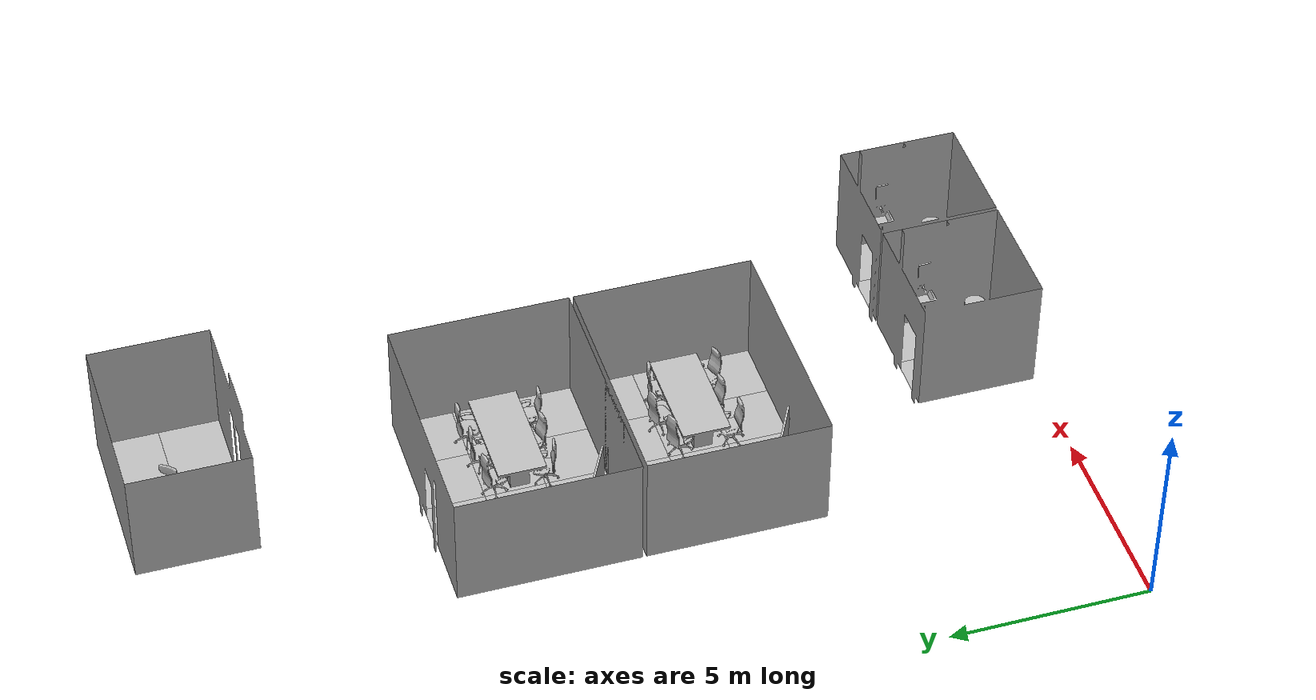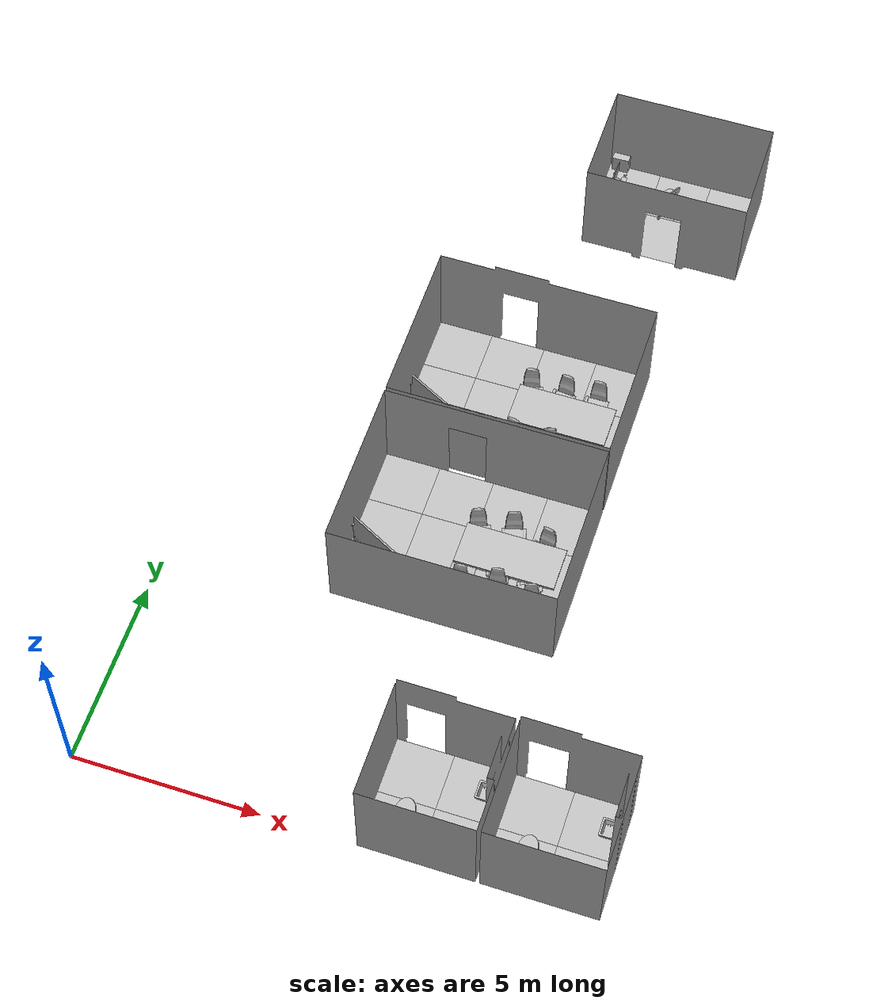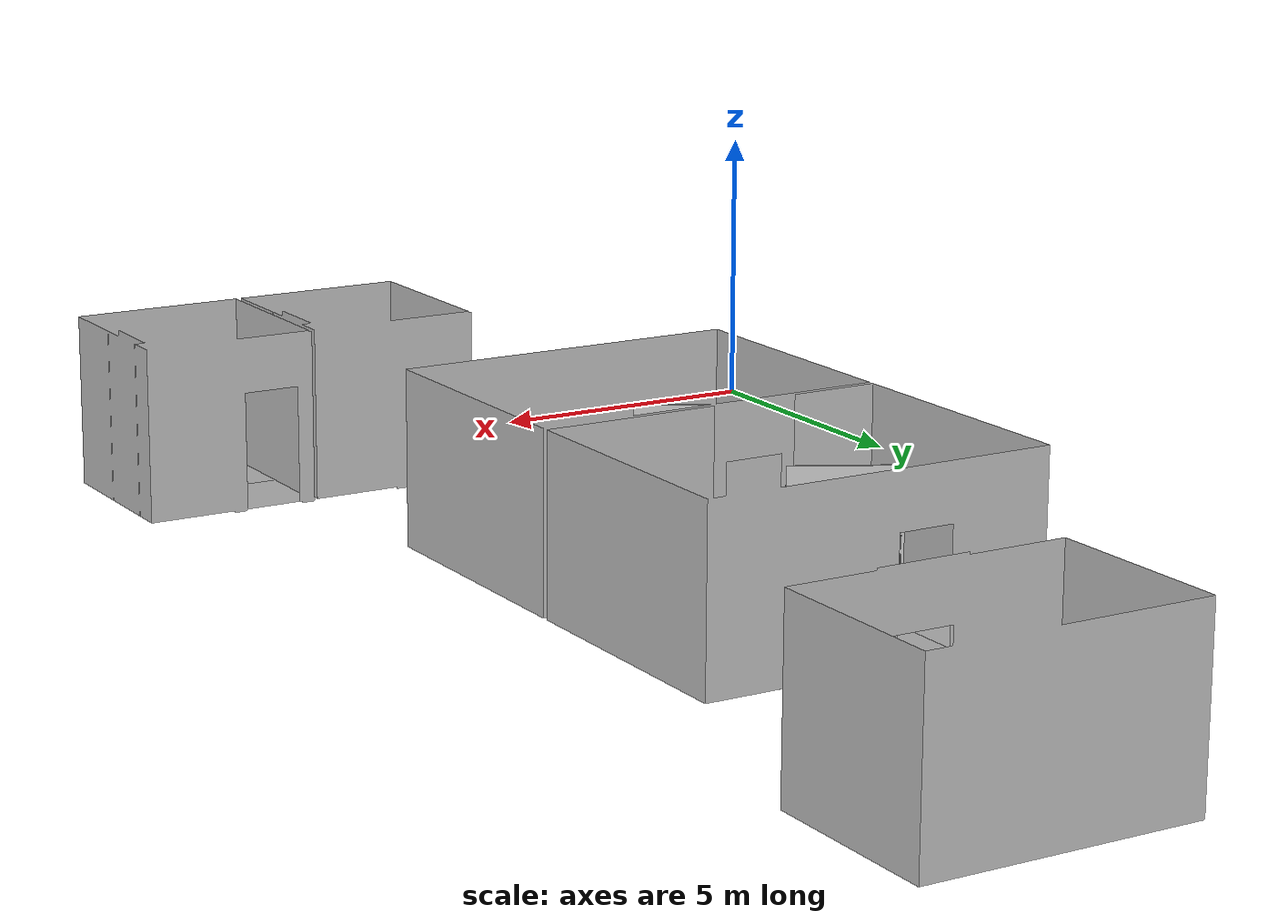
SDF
<sdf version="1.7">
 <world name="default">
  <model name="PublicBathroomA">
   <static>1</static>
   <pose>9 3 0 0 -0 0</pose>
   <link name="link">
    <collision name="right_of_door">
     <pose>0.63 0.05 1.5 0 -0 0</pose>
     <geometry><box><size>1.74 0.1 3</size></box></geometry>
    </collision>
    <collision name="left_of_door">
     <pose>-1.38 0.05 1.5 0 -0 0</pose>
     <geometry><box><size>0.24 0.1 3</size></box></geometry>
    </collision>
    <collision name="top_of_door">
     <pose>-0.75 0.05 2.55 0 -0 0</pose>
     <geometry><box><size>1.5 0.1 0.9</size></box></geometry>
    </collision>
    <collision name="right">
     <pose>1.55 -1.5 1.5 0 -0 0</pose>
     <geometry><box><size>0.1 3 3</size></box></geometry>
    </collision>
    <collision name="left">
     <pose>-1.55 -1.5 1.5 0 -0 0</pose>
     <geometry><box><size>0.1 3 3</size></box></geometry>
    </collision>
    <collision name="back">
     <pose>0 -3.05 1.5 0 -0 0</pose>
     <geometry><box><size>3 0.1 3</size></box></geometry>
    </collision>
    <visual name="visual">
     <geometry><mesh><uri>model://media/meshes/bathroom.obj</uri><scale>0.01 0.01 0.01</scale></mesh></geometry>
    </visual>
    <visual name="floor_0_-1">
     <pose>0 -1.5 0 0 -0 0</pose>
     <geometry><mesh><uri>model://media/meshes/tile.obj</uri><scale>0.01 0.01 0.01</scale></mesh></geometry>
    </visual>
    <visual name="floor_0_0">
     <geometry><mesh><uri>model://media/meshes/tile.obj</uri><scale>0.01 0.01 0.01</scale></mesh></geometry>
    </visual>
    <visual name="floor_1_-1">
     <pose>1.5 -1.5 0 0 -0 0</pose>
     <geometry><mesh><uri>model://media/meshes/tile.obj</uri><scale>0.01 0.01 0.01</scale></mesh></geometry>
    </visual>
    <visual name="floor_1_0">
     <pose>1.5 0 0 0 -0 0</pose>
     <geometry><mesh><uri>model://media/meshes/tile.obj</uri><scale>0.01 0.01 0.01</scale></mesh></geometry>
    </visual>
   </link>
   <frame name="toilet::__model__" attached_to="toilet::link">
    <pose relative_to="__model__">-0.6 -2.1 0 0 -0 3.14159</pose>
   </frame>
   <static>1</static>
   <link name="toilet::link">
    <collision name="collision">
     <pose>-0.003873 0.134001 0.582097 0 -0 0</pose>
     <geometry><box><size>0.551631 1.09406 1.18218</size></box></geometry>
    </collision>
    <visual name="visual">
     <geometry><mesh><uri>model://toilet/meshes/toilet.dae</uri><scale>1.4 1.4 1.4</scale></mesh></geometry>
    </visual>
    <pose relative_to="toilet::__model__">0 0 0 0 -0 0</pose>
   </link>
   <frame name="wastebasket::__model__" attached_to="wastebasket::link">
    <pose relative_to="__model__">0.9 -2.35 0 0 0 -0.785398</pose>
   </frame>
   <static>1</static>
   <link name="wastebasket::link">
    <pose relative_to="wastebasket::__model__">0 0 0 0 -0 1.5708</pose>
    <collision name="collision">
     <pose>0.001581 0.000308 0.312969 0 -0 0</pose>
     <geometry><cylinder><radius>0.27</radius><length>0.63</length></cylinder></geometry>
    </collision>
    <visual name="visual">
     <geometry>
      <mesh><uri>model://wastebasket/meshes/wastebasket.dae</uri><scale>1.4 1.4 1.4</scale></mesh>
     </geometry>
    </visual>
   </link>
  </model>
  <model name="PublicBathroomB">
   <static>1</static>
   <pose>12.1 3 0 0 -0 0</pose>
   <link name="link">
    <collision name="right_of_door">
     <pose>0.63 0.05 1.5 0 -0 0</pose>
     <geometry><box><size>1.74 0.1 3</size></box></geometry>
    </collision>
    <collision name="left_of_door">
     <pose>-1.38 0.05 1.5 0 -0 0</pose>
     <geometry><box><size>0.24 0.1 3</size></box></geometry>
    </collision>
    <collision name="top_of_door">
     <pose>-0.75 0.05 2.55 0 -0 0</pose>
     <geometry><box><size>1.5 0.1 0.9</size></box></geometry>
    </collision>
    <collision name="right">
     <pose>1.55 -1.5 1.5 0 -0 0</pose>
     <geometry><box><size>0.1 3 3</size></box></geometry>
    </collision>
    <collision name="left">
     <pose>-1.55 -1.5 1.5 0 -0 0</pose>
     <geometry><box><size>0.1 3 3</size></box></geometry>
    </collision>
    <collision name="back">
     <pose>0 -3.05 1.5 0 -0 0</pose>
     <geometry><box><size>3 0.1 3</size></box></geometry>
    </collision>
    <visual name="visual">
     <geometry><mesh><uri>model://media/meshes/bathroom.obj</uri><scale>0.01 0.01 0.01</scale></mesh></geometry>
    </visual>
    <visual name="floor_0_-1">
     <pose>0 -1.5 0 0 -0 0</pose>
     <geometry><mesh><uri>model://media/meshes/tile.obj</uri><scale>0.01 0.01 0.01</scale></mesh></geometry>
    </visual>
    <visual name="floor_0_0">
     <geometry><mesh><uri>model://media/meshes/tile.obj</uri><scale>0.01 0.01 0.01</scale></mesh></geometry>
    </visual>
    <visual name="floor_1_-1">
     <pose>1.5 -1.5 0 0 -0 0</pose>
     <geometry><mesh><uri>model://media/meshes/tile.obj</uri><scale>0.01 0.01 0.01</scale></mesh></geometry>
    </visual>
    <visual name="floor_1_0">
     <pose>1.5 0 0 0 -0 0</pose>
     <geometry><mesh><uri>model://media/meshes/tile.obj</uri><scale>0.01 0.01 0.01</scale></mesh></geometry>
    </visual>
   </link>
   <frame name="toilet::__model__" attached_to="toilet::link">
    <pose relative_to="__model__">-0.6 -2.1 0 0 -0 3.14159</pose>
   </frame>
   <static>1</static>
   <link name="toilet::link">
    <collision name="collision">
     <pose>-0.003873 0.134001 0.582097 0 -0 0</pose>
     <geometry><box><size>0.551631 1.09406 1.18218</size></box></geometry>
    </collision>
    <visual name="visual">
     <geometry><mesh><uri>model://toilet/meshes/toilet.dae</uri><scale>1.4 1.4 1.4</scale></mesh></geometry>
    </visual>
    <pose relative_to="toilet::__model__">0 0 0 0 -0 0</pose>
   </link>
   <frame name="wastebasket::__model__" attached_to="wastebasket::link">
    <pose relative_to="__model__">0.9 -2.35 0 0 0 -0.785398</pose>
   </frame>
   <static>1</static>
   <link name="wastebasket::link">
    <pose relative_to="wastebasket::__model__">0 0 0 0 -0 1.5708</pose>
    <collision name="collision">
     <pose>0.001581 0.000308 0.312969 0 -0 0</pose>
     <geometry><cylinder><radius>0.27</radius><length>0.63</length></cylinder></geometry>
    </collision>
    <visual name="visual">
     <geometry>
      <mesh><uri>model://wastebasket/meshes/wastebasket.dae</uri><scale>1.4 1.4 1.4</scale></mesh>
     </geometry>
    </visual>
   </link>
  </model>
  <model name="PublicMeetingRoomD">
   <static>1</static>
   <pose>8.9 19.5 0 0 -0 3.14159</pose>
   <link name="link">
    <collision name="right_of_door">
     <pose>0.63 0.05 1.5 0 -0 0</pose>
     <geometry><box><size>1.74 0.1 3</size></box></geometry>
    </collision>
    <collision name="left_of_door">
     <pose>-2.13 0.05 1.5 0 -0 0</pose>
     <geometry><box><size>1.74 0.1 3</size></box></geometry>
    </collision>
    <collision name="top_of_door">
     <pose>-0.75 0.05 2.55 0 -0 0</pose>
     <geometry><box><size>1.5 0.1 0.9</size></box></geometry>
    </collision>
    <collision name="right">
     <pose>1.55 -1.5 1.5 0 -0 0</pose>
     <geometry><box><size>0.1 3 3</size></box></geometry>
    </collision>
    <collision name="left">
     <pose>-3.05 -1.5 1.5 0 -0 0</pose>
     <geometry><box><size>0.1 3 3</size></box></geometry>
    </collision>
    <collision name="back">
     <pose>-0.75 -3.05 1.5 0 -0 0</pose>
     <geometry><box><size>4.5 0.1 3</size></box></geometry>
    </collision>
    <visual name="visual">
     <geometry>
      <mesh><uri>model://media/meshes/office_small.obj</uri><scale>0.01 0.01 0.01</scale></mesh>
     </geometry>
    </visual>
    <visual name="floor_-1_-1">
     <pose>-1.5 -1.5 0 0 -0 0</pose>
     <geometry><mesh><uri>model://media/meshes/carpet.obj</uri><scale>0.01 0.01 0.01</scale></mesh></geometry>
    </visual>
    <visual name="floor_-1_0">
     <pose>-1.5 0 0 0 -0 0</pose>
     <geometry><mesh><uri>model://media/meshes/carpet.obj</uri><scale>0.01 0.01 0.01</scale></mesh></geometry>
    </visual>
    <visual name="floor_0_-1">
     <pose>0 -1.5 0 0 -0 0</pose>
     <geometry><mesh><uri>model://media/meshes/carpet.obj</uri><scale>0.01 0.01 0.01</scale></mesh></geometry>
    </visual>
    <visual name="floor_0_0">
     <geometry><mesh><uri>model://media/meshes/carpet.obj</uri><scale>0.01 0.01 0.01</scale></mesh></geometry>
    </visual>
    <visual name="floor_1_-1">
     <pose>1.5 -1.5 0 0 -0 0</pose>
     <geometry><mesh><uri>model://media/meshes/carpet.obj</uri><scale>0.01 0.01 0.01</scale></mesh></geometry>
    </visual>
    <visual name="floor_1_0">
     <pose>1.5 0 0 0 -0 0</pose>
     <geometry><mesh><uri>model://media/meshes/carpet.obj</uri><scale>0.01 0.01 0.01</scale></mesh></geometry>
    </visual>
   </link>
   <model name="corner_1">
    <static>1</static>
    <pose>1.5 -3 0 0 0 -1.5708</pose>
    <link name="link">
     <collision name="collision_x">
      <pose>-0.925 -0.375 0.38 0 -0 0</pose>
      <geometry><box><size>1.85 0.75 0.76</size></box></geometry>
     </collision>
     <collision name="collision_y">
      <pose>-0.375 -0.925 0.38 0 -0 0</pose>
      <geometry><box><size>0.75 1.85 0.76</size></box></geometry>
     </collision>
    </link>
    <frame name="computer::__model__" attached_to="computer::monitor">
     <pose relative_to="__model__">-1.22 -0.45 0.76 0 -0 0</pose>
    </frame>
    <static>1</static>
    <link name="computer::monitor">
     <visual name="visual">
      <geometry>
       <mesh><uri>model://computer/meshes/computer_monitor.obj</uri><scale>0.01 0.01 0.01</scale></mesh>
      </geometry>
     </visual>
     <pose relative_to="computer::__model__">0 0 0 0 -0 0</pose>
    </link>
    <link name="computer::tower">
     <pose relative_to="computer::__model__">0.5 0 0 0 -0 0</pose>
     <visual name="visual">
      <geometry>
       <mesh><uri>model://computer/meshes/computer_tower.obj</uri><scale>0.01 0.01 0.01</scale></mesh>
      </geometry>
     </visual>
    </link>
    <frame name="office_chair::__model__" attached_to="office_chair::link">
     <pose relative_to="__model__">-1.1953 -1.99907 0 0 -0 2.47197</pose>
    </frame>
    <static>1</static>
    <link name="office_chair::link">
     <collision name="collision">
      <pose>0.001581 0.000308 0.569888 0 -0 0</pose>
      <geometry><cylinder><radius>0.43</radius><length>1.14</length></cylinder></geometry>
     </collision>
     <visual name="visual">
      <geometry>
       <mesh><uri>model://office_chair/meshes/office_chair.dae</uri><scale>1.4 1.4 1.4</scale></mesh>
      </geometry>
     </visual>
     <pose relative_to="office_chair::__model__">0 0 0 0 -0 0</pose>
    </link>
   </model>
   <frame name="office_box::__model__" attached_to="office_box::link">
    <pose relative_to="__model__">1.1 -0.5 0 0 -0 3.14159</pose>
   </frame>
   <static>1</static>
   <link name="office_box::link">
    <pose relative_to="office_box::__model__">0 0 0.15 0 -0 0.7</pose>
    <collision name="collision"><geometry><box><size>0.5 0.4 0.3</size></box></geometry></collision>
    <visual name="visual">
     <pose>0 0 -0.15 0 -0 0</pose>
     <geometry>
      <mesh><uri>model://office_box/meshes/office_box.dae</uri><scale>1.25932 1.00745 0.755591</scale></mesh>
     </geometry>
    </visual>
   </link>
  </model>
  <model name="PrivateMeetingRoomA">
   <link name="link">
    <visual name="floor_2_-1">
     <pose>3 -1.5 0 0 -0 0</pose>
     <geometry><mesh><uri>model://media/meshes/carpet.obj</uri><scale>0.01 0.01 0.01</scale></mesh></geometry>
     <material><shader type="pixel"/></material>
    </visual>
    <visual name="visual">
     <geometry>
      <mesh><uri>model://media/meshes/meeting_room_small.obj</uri><scale>0.01 0.01 0.01</scale></mesh>
     </geometry>
     <material><shader type="pixel"/></material>
    </visual>
    <visual name="floor_-1_-2">
     <pose>-1.5 -3 0 0 -0 0</pose>
     <geometry><mesh><uri>model://media/meshes/carpet.obj</uri><scale>0.01 0.01 0.01</scale></mesh></geometry>
     <material><shader type="pixel"/></material>
    </visual>
    <visual name="floor_-1_-1">
     <pose>-1.5 -1.5 0 0 -0 0</pose>
     <geometry><mesh><uri>model://media/meshes/carpet.obj</uri><scale>0.01 0.01 0.01</scale></mesh></geometry>
     <material><shader type="pixel"/></material>
    </visual>
    <visual name="floor_-1_0">
     <pose>-1.5 0 0 0 -0 0</pose>
     <geometry><mesh><uri>model://media/meshes/carpet.obj</uri><scale>0.01 0.01 0.01</scale></mesh></geometry>
     <material><shader type="pixel"/></material>
    </visual>
    <visual name="floor_0_-2">
     <pose>0 -3 0 0 -0 0</pose>
     <geometry><mesh><uri>model://media/meshes/carpet.obj</uri><scale>0.01 0.01 0.01</scale></mesh></geometry>
     <material><shader type="pixel"/></material>
    </visual>
    <visual name="floor_0_-1">
     <pose>0 -1.5 0 0 -0 0</pose>
     <geometry><mesh><uri>model://media/meshes/carpet.obj</uri><scale>0.01 0.01 0.01</scale></mesh></geometry>
     <material><shader type="pixel"/></material>
    </visual>
    <visual name="floor_0_0">
     <geometry><mesh><uri>model://media/meshes/carpet.obj</uri><scale>0.01 0.01 0.01</scale></mesh></geometry>
     <material><shader type="pixel"/></material>
    </visual>
    <visual name="floor_1_-2">
     <pose>1.5 -3 0 0 -0 0</pose>
     <geometry><mesh><uri>model://media/meshes/carpet.obj</uri><scale>0.01 0.01 0.01</scale></mesh></geometry>
     <material><shader type="pixel"/></material>
    </visual>
    <visual name="floor_1_-1">
     <pose>1.5 -1.5 0 0 -0 0</pose>
     <geometry><mesh><uri>model://media/meshes/carpet.obj</uri><scale>0.01 0.01 0.01</scale></mesh></geometry>
     <material><shader type="pixel"/></material>
    </visual>
    <visual name="floor_1_0">
     <pose>1.5 0 0 0 -0 0</pose>
     <geometry><mesh><uri>model://media/meshes/carpet.obj</uri><scale>0.01 0.01 0.01</scale></mesh></geometry>
     <material><shader type="pixel"/></material>
    </visual>
    <visual name="floor_2_-2">
     <pose>3 -3 0 0 -0 0</pose>
     <geometry><mesh><uri>model://media/meshes/carpet.obj</uri><scale>0.01 0.01 0.01</scale></mesh></geometry>
     <material><shader type="pixel"/></material>
    </visual>
    <visual name="floor_2_0">
     <pose>3 0 0 0 -0 0</pose>
     <geometry><mesh><uri>model://media/meshes/carpet.obj</uri><scale>0.01 0.01 0.01</scale></mesh></geometry>
     <material><shader type="pixel"/></material>
    </visual>
    <collision name="right_of_door">
     <pose>1.38 0.05 1.5 0 -0 0</pose>
     <geometry><box><size>3.24 0.1 3</size></box></geometry>
     <surface>
      <friction>
       <ode><mu>1</mu><mu2>1</mu2><fdir1>0 0 0</fdir1><slip1>0</slip1><slip2>0</slip2></ode>
       <torsional>
        <coefficient>1</coefficient>
        <patch_radius>0</patch_radius>
        <surface_radius>0</surface_radius>
        <use_patch_radius>1</use_patch_radius>
        <ode><slip>0</slip></ode>
       </torsional>
      </friction>
      <bounce><restitution_coefficient>0</restitution_coefficient><threshold>1e+06</threshold></bounce>
      <contact>
       <collide_without_contact>0</collide_without_contact>
       <collide_without_contact_bitmask>1</collide_without_contact_bitmask>
       <collide_bitmask>1</collide_bitmask>
       <ode>
        <soft_cfm>0</soft_cfm>
        <soft_erp>0.2</soft_erp>
        <kp>1e+13</kp>
        <kd>1</kd>
        <max_vel>0.01</max_vel>
        <min_depth>0</min_depth>
       </ode>
       <bullet>
        <split_impulse>1</split_impulse>
        <split_impulse_penetration_threshold>-0.01</split_impulse_penetration_threshold>
        <soft_cfm>0</soft_cfm>
        <soft_erp>0.2</soft_erp>
        <kp>1e+13</kp>
        <kd>1</kd>
       </bullet>
      </contact>
     </surface>
    </collision>
    <collision name="left_of_door">
     <pose>-2.13 0.05 1.5 0 -0 0</pose>
     <geometry><box><size>1.74 0.1 3</size></box></geometry>
     <surface>
      <friction>
       <ode><mu>1</mu><mu2>1</mu2><fdir1>0 0 0</fdir1><slip1>0</slip1><slip2>0</slip2></ode>
       <torsional>
        <coefficient>1</coefficient>
        <patch_radius>0</patch_radius>
        <surface_radius>0</surface_radius>
        <use_patch_radius>1</use_patch_radius>
        <ode><slip>0</slip></ode>
       </torsional>
      </friction>
      <bounce><restitution_coefficient>0</restitution_coefficient><threshold>1e+06</threshold></bounce>
      <contact>
       <collide_without_contact>0</collide_without_contact>
       <collide_without_contact_bitmask>1</collide_without_contact_bitmask>
       <collide_bitmask>1</collide_bitmask>
       <ode>
        <soft_cfm>0</soft_cfm>
        <soft_erp>0.2</soft_erp>
        <kp>1e+13</kp>
        <kd>1</kd>
        <max_vel>0.01</max_vel>
        <min_depth>0</min_depth>
       </ode>
       <bullet>
        <split_impulse>1</split_impulse>
        <split_impulse_penetration_threshold>-0.01</split_impulse_penetration_threshold>
        <soft_cfm>0</soft_cfm>
        <soft_erp>0.2</soft_erp>
        <kp>1e+13</kp>
        <kd>1</kd>
       </bullet>
      </contact>
     </surface>
    </collision>
    <collision name="left">
     <pose>-3.05 -2.25 1.5 0 -0 0</pose>
     <geometry><box><size>0.1 4.5 3</size></box></geometry>
     <surface>
      <friction>
       <ode><mu>1</mu><mu2>1</mu2><fdir1>0 0 0</fdir1><slip1>0</slip1><slip2>0</slip2></ode>
       <torsional>
        <coefficient>1</coefficient>
        <patch_radius>0</patch_radius>
        <surface_radius>0</surface_radius>
        <use_patch_radius>1</use_patch_radius>
        <ode><slip>0</slip></ode>
       </torsional>
      </friction>
      <bounce><restitution_coefficient>0</restitution_coefficient><threshold>1e+06</threshold></bounce>
      <contact>
       <collide_without_contact>0</collide_without_contact>
       <collide_without_contact_bitmask>1</collide_without_contact_bitmask>
       <collide_bitmask>1</collide_bitmask>
       <ode>
        <soft_cfm>0</soft_cfm>
        <soft_erp>0.2</soft_erp>
        <kp>1e+13</kp>
        <kd>1</kd>
        <max_vel>0.01</max_vel>
        <min_depth>0</min_depth>
       </ode>
       <bullet>
        <split_impulse>1</split_impulse>
        <split_impulse_penetration_threshold>-0.01</split_impulse_penetration_threshold>
        <soft_cfm>0</soft_cfm>
        <soft_erp>0.2</soft_erp>
        <kp>1e+13</kp>
        <kd>1</kd>
       </bullet>
      </contact>
     </surface>
    </collision>
    <collision name="top_of_door">
     <pose>-0.75 0.05 2.55 0 -0 0</pose>
     <geometry><box><size>1.5 0.1 0.9</size></box></geometry>
     <surface>
      <friction>
       <ode><mu>1</mu><mu2>1</mu2><fdir1>0 0 0</fdir1><slip1>0</slip1><slip2>0</slip2></ode>
       <torsional>
        <coefficient>1</coefficient>
        <patch_radius>0</patch_radius>
        <surface_radius>0</surface_radius>
        <use_patch_radius>1</use_patch_radius>
        <ode><slip>0</slip></ode>
       </torsional>
      </friction>
      <bounce><restitution_coefficient>0</restitution_coefficient><threshold>1e+06</threshold></bounce>
      <contact>
       <collide_without_contact>0</collide_without_contact>
       <collide_without_contact_bitmask>1</collide_without_contact_bitmask>
       <collide_bitmask>1</collide_bitmask>
       <ode>
        <soft_cfm>0</soft_cfm>
        <soft_erp>0.2</soft_erp>
        <kp>1e+13</kp>
        <kd>1</kd>
        <max_vel>0.01</max_vel>
        <min_depth>0</min_depth>
       </ode>
       <bullet>
        <split_impulse>1</split_impulse>
        <split_impulse_penetration_threshold>-0.01</split_impulse_penetration_threshold>
        <soft_cfm>0</soft_cfm>
        <soft_erp>0.2</soft_erp>
        <kp>1e+13</kp>
        <kd>1</kd>
       </bullet>
      </contact>
     </surface>
    </collision>
    <collision name="right">
     <pose>3.05 -2.25 1.5 0 -0 0</pose>
     <geometry><box><size>0.1 4.5 3</size></box></geometry>
     <surface>
      <friction>
       <ode><mu>1</mu><mu2>1</mu2><fdir1>0 0 0</fdir1><slip1>0</slip1><slip2>0</slip2></ode>
       <torsional>
        <coefficient>1</coefficient>
        <patch_radius>0</patch_radius>
        <surface_radius>0</surface_radius>
        <use_patch_radius>1</use_patch_radius>
        <ode><slip>0</slip></ode>
       </torsional>
      </friction>
      <bounce><restitution_coefficient>0</restitution_coefficient><threshold>1e+06</threshold></bounce>
      <contact>
       <collide_without_contact>0</collide_without_contact>
       <collide_without_contact_bitmask>1</collide_without_contact_bitmask>
       <collide_bitmask>1</collide_bitmask>
       <ode>
        <soft_cfm>0</soft_cfm>
        <soft_erp>0.2</soft_erp>
        <kp>1e+13</kp>
        <kd>1</kd>
        <max_vel>0.01</max_vel>
        <min_depth>0</min_depth>
       </ode>
       <bullet>
        <split_impulse>1</split_impulse>
        <split_impulse_penetration_threshold>-0.01</split_impulse_penetration_threshold>
        <soft_cfm>0</soft_cfm>
        <soft_erp>0.2</soft_erp>
        <kp>1e+13</kp>
        <kd>1</kd>
       </bullet>
      </contact>
     </surface>
    </collision>
    <collision name="back">
     <pose>0 -4.55 1.5 0 -0 0</pose>
     <geometry><box><size>6 0.1 3</size></box></geometry>
     <surface>
      <friction>
       <ode><mu>1</mu><mu2>1</mu2><fdir1>0 0 0</fdir1><slip1>0</slip1><slip2>0</slip2></ode>
       <torsional>
        <coefficient>1</coefficient>
        <patch_radius>0</patch_radius>
        <surface_radius>0</surface_radius>
        <use_patch_radius>1</use_patch_radius>
        <ode><slip>0</slip></ode>
       </torsional>
      </friction>
      <bounce><restitution_coefficient>0</restitution_coefficient><threshold>1e+06</threshold></bounce>
      <contact>
       <collide_without_contact>0</collide_without_contact>
       <collide_without_contact_bitmask>1</collide_without_contact_bitmask>
       <collide_bitmask>1</collide_bitmask>
       <ode>
        <soft_cfm>0</soft_cfm>
        <soft_erp>0.2</soft_erp>
        <kp>1e+13</kp>
        <kd>1</kd>
        <max_vel>0.01</max_vel>
        <min_depth>0</min_depth>
       </ode>
       <bullet>
        <split_impulse>1</split_impulse>
        <split_impulse_penetration_threshold>-0.01</split_impulse_penetration_threshold>
        <soft_cfm>0</soft_cfm>
        <soft_erp>0.2</soft_erp>
        <kp>1e+13</kp>
        <kd>1</kd>
       </bullet>
      </contact>
     </surface>
    </collision>
   </link>
   <link name="whiteboard::link">
    <pose>-1.9 -3.68 0 0 -0 2.66</pose>
    <visual name="visual">
     <geometry>
      <mesh><uri>model://whiteboard/meshes/whiteboard.obj</uri><scale>0.01 0.01 0.01</scale></mesh>
     </geometry>
     <material><shader type="pixel"/></material>
    </visual>
    <collision name="collision">
     <pose>-0.010992 -0.000776 0.998212 0 -0 0</pose>
     <geometry><box><size>1.97372 0.69682 2.02507</size></box></geometry>
     <surface>
      <friction>
       <ode><mu>1</mu><mu2>1</mu2><fdir1>0 0 0</fdir1><slip1>0</slip1><slip2>0</slip2></ode>
       <torsional>
        <coefficient>1</coefficient>
        <patch_radius>0</patch_radius>
        <surface_radius>0</surface_radius>
        <use_patch_radius>1</use_patch_radius>
        <ode><slip>0</slip></ode>
       </torsional>
      </friction>
      <bounce><restitution_coefficient>0</restitution_coefficient><threshold>1e+06</threshold></bounce>
      <contact>
       <collide_without_contact>0</collide_without_contact>
       <collide_without_contact_bitmask>1</collide_without_contact_bitmask>
       <collide_bitmask>1</collide_bitmask>
       <ode>
        <soft_cfm>0</soft_cfm>
        <soft_erp>0.2</soft_erp>
        <kp>1e+13</kp>
        <kd>1</kd>
        <max_vel>0.01</max_vel>
        <min_depth>0</min_depth>
       </ode>
       <bullet>
        <split_impulse>1</split_impulse>
        <split_impulse_penetration_threshold>-0.01</split_impulse_penetration_threshold>
        <soft_cfm>0</soft_cfm>
        <soft_erp>0.2</soft_erp>
        <kp>1e+13</kp>
        <kd>1</kd>
       </bullet>
      </contact>
     </surface>
    </collision>
   </link>
   <model name="table_and_chairs">
    <pose>1.05 -2.4 0 0 -0 0</pose>
    <frame name="conference_table_small::__model__" attached_to="conference_table_small::link">
     <pose relative_to="__model__">0 0 0 0 -0 0</pose>
    </frame>
    <static>1</static>
    <link name="conference_table_small::link">
     <collision name="collision">
      <pose>0.152873 -0.000776 0.367474 0 -0 0</pose>
      <geometry><box><size>2.7094 1.21763 0.742359</size></box></geometry>
     </collision>
     <visual name="visual">
      <geometry>
       <mesh>
        <uri>model://conference_table_small/meshes/conference_table_small.obj</uri>
        <scale>0.01 0.01 0.01</scale>
       </mesh>
      </geometry>
     </visual>
    </link>
    <frame name="chair_-0.9_-0.7204611100756972::__model__" attached_to="chair_-0.9_-0.7204611100756972::link">
     <pose relative_to="__model__">-0.9 -0.720461 0 0 -0 -3.10468</pose>
    </frame>
    <static>1</static>
    <link name="chair_-0.9_-0.7204611100756972::link">
     <collision name="collision">
      <pose>0.001581 0.000308 0.612847 0 -0 0</pose>
      <geometry><cylinder><radius>0.33</radius><length>1.23</length></cylinder></geometry>
     </collision>
     <visual name="visual">
      <geometry>
       <mesh><uri>model://desk_chair/meshes/desk_chair.obj</uri><scale>0.01 0.01 0.01</scale></mesh>
      </geometry>
     </visual>
     <pose>-0.9 -0.720461 0 0 0 -3.10468</pose>
    </link>
    <frame name="chair_-0.9_0.6008246604693279::__model__" attached_to="chair_-0.9_0.6008246604693279::link">
     <pose relative_to="__model__">-0.9 0.600825 0 0 -0 0.362065</pose>
    </frame>
    <static>1</static>
    <link name="chair_-0.9_0.6008246604693279::link">
     <collision name="collision">
      <pose>0.001581 0.000308 0.612847 0 -0 0</pose>
      <geometry><cylinder><radius>0.33</radius><length>1.23</length></cylinder></geometry>
     </collision>
     <visual name="visual">
      <geometry>
       <mesh><uri>model://desk_chair/meshes/desk_chair.obj</uri><scale>0.01 0.01 0.01</scale></mesh>
      </geometry>
     </visual>
     <pose>-0.9 0.600825 0 0 -0 0.362065</pose>
    </link>
    <frame name="chair_0.0_-0.534246382357672::__model__" attached_to="chair_0.0_-0.534246382357672::link">
     <pose relative_to="__model__">0 -0.534246 0 0 -0 -2.94768</pose>
    </frame>
    <static>1</static>
    <link name="chair_0.0_-0.534246382357672::link">
     <collision name="collision">
      <pose>0.001581 0.000308 0.612847 0 -0 0</pose>
      <geometry><cylinder><radius>0.33</radius><length>1.23</length></cylinder></geometry>
     </collision>
     <visual name="visual">
      <geometry>
       <mesh><uri>model://desk_chair/meshes/desk_chair.obj</uri><scale>0.01 0.01 0.01</scale></mesh>
      </geometry>
     </visual>
     <pose>0 -0.534246 0 0 0 -2.94768</pose>
    </link>
    <frame name="chair_0.0_0.7947051860876158::__model__" attached_to="chair_0.0_0.7947051860876158::link">
     <pose relative_to="__model__">0 0.794705 0 0 -0 0.278459</pose>
    </frame>
    <static>1</static>
    <link name="chair_0.0_0.7947051860876158::link">
     <collision name="collision">
      <pose>0.001581 0.000308 0.612847 0 -0 0</pose>
      <geometry><cylinder><radius>0.33</radius><length>1.23</length></cylinder></geometry>
     </collision>
     <visual name="visual">
      <geometry>
       <mesh><uri>model://desk_chair/meshes/desk_chair.obj</uri><scale>0.01 0.01 0.01</scale></mesh>
      </geometry>
     </visual>
     <pose>0 0.794705 0 0 -0 0.278459</pose>
    </link>
    <frame name="chair_0.9_-0.7196781325934869::__model__" attached_to="chair_0.9_-0.7196781325934869::link">
     <pose relative_to="__model__">0.9 -0.719678 0 0 -0 -2.78275</pose>
    </frame>
    <static>1</static>
    <link name="chair_0.9_-0.7196781325934869::link">
     <collision name="collision">
      <pose>0.001581 0.000308 0.612847 0 -0 0</pose>
      <geometry><cylinder><radius>0.33</radius><length>1.23</length></cylinder></geometry>
     </collision>
     <visual name="visual">
      <geometry>
       <mesh><uri>model://desk_chair/meshes/desk_chair.obj</uri><scale>0.01 0.01 0.01</scale></mesh>
      </geometry>
     </visual>
     <pose>0.9 -0.719678 0 0 0 -2.78275</pose>
    </link>
    <frame name="chair_0.9_0.5785956657835173::__model__" attached_to="chair_0.9_0.5785956657835173::link">
     <pose relative_to="__model__">0.9 0.578596 0 0 0 -0.18382</pose>
    </frame>
    <static>1</static>
    <link name="chair_0.9_0.5785956657835173::link">
     <collision name="collision">
      <pose>0.001581 0.000308 0.612847 0 -0 0</pose>
      <geometry><cylinder><radius>0.33</radius><length>1.23</length></cylinder></geometry>
     </collision>
     <visual name="visual">
      <geometry>
       <mesh><uri>model://desk_chair/meshes/desk_chair.obj</uri><scale>0.01 0.01 0.01</scale></mesh>
      </geometry>
     </visual>
     <pose>0.9 0.578596 0 0 0 -0.18382</pose>
    </link>
   </model>
   <static>1</static>
   <pose>7.5 10.9 0 0 -0 0</pose>
  </model>
  <model name="PublicMeetingRoomB">
   <link name="link">
    <visual name="floor_2_-1">
     <pose>3 -1.5 0 0 -0 0</pose>
     <geometry><mesh><uri>model://media/meshes/carpet.obj</uri><scale>0.01 0.01 0.01</scale></mesh></geometry>
     <material><shader type="pixel"/></material>
    </visual>
    <visual name="visual">
     <geometry>
      <mesh><uri>model://media/meshes/meeting_room_small.obj</uri><scale>0.01 0.01 0.01</scale></mesh>
     </geometry>
     <material><shader type="pixel"/></material>
    </visual>
    <visual name="floor_-1_-2">
     <pose>-1.5 -3 0 0 -0 0</pose>
     <geometry><mesh><uri>model://media/meshes/carpet.obj</uri><scale>0.01 0.01 0.01</scale></mesh></geometry>
     <material><shader type="pixel"/></material>
    </visual>
    <visual name="floor_-1_-1">
     <pose>-1.5 -1.5 0 0 -0 0</pose>
     <geometry><mesh><uri>model://media/meshes/carpet.obj</uri><scale>0.01 0.01 0.01</scale></mesh></geometry>
     <material><shader type="pixel"/></material>
    </visual>
    <visual name="floor_-1_0">
     <pose>-1.5 0 0 0 -0 0</pose>
     <geometry><mesh><uri>model://media/meshes/carpet.obj</uri><scale>0.01 0.01 0.01</scale></mesh></geometry>
     <material><shader type="pixel"/></material>
    </visual>
    <visual name="floor_0_-2">
     <pose>0 -3 0 0 -0 0</pose>
     <geometry><mesh><uri>model://media/meshes/carpet.obj</uri><scale>0.01 0.01 0.01</scale></mesh></geometry>
     <material><shader type="pixel"/></material>
    </visual>
    <visual name="floor_0_-1">
     <pose>0 -1.5 0 0 -0 0</pose>
     <geometry><mesh><uri>model://media/meshes/carpet.obj</uri><scale>0.01 0.01 0.01</scale></mesh></geometry>
     <material><shader type="pixel"/></material>
    </visual>
    <visual name="floor_0_0">
     <geometry><mesh><uri>model://media/meshes/carpet.obj</uri><scale>0.01 0.01 0.01</scale></mesh></geometry>
     <material><shader type="pixel"/></material>
    </visual>
    <visual name="floor_1_-2">
     <pose>1.5 -3 0 0 -0 0</pose>
     <geometry><mesh><uri>model://media/meshes/carpet.obj</uri><scale>0.01 0.01 0.01</scale></mesh></geometry>
     <material><shader type="pixel"/></material>
    </visual>
    <visual name="floor_1_-1">
     <pose>1.5 -1.5 0 0 -0 0</pose>
     <geometry><mesh><uri>model://media/meshes/carpet.obj</uri><scale>0.01 0.01 0.01</scale></mesh></geometry>
     <material><shader type="pixel"/></material>
    </visual>
    <visual name="floor_1_0">
     <pose>1.5 0 0 0 -0 0</pose>
     <geometry><mesh><uri>model://media/meshes/carpet.obj</uri><scale>0.01 0.01 0.01</scale></mesh></geometry>
     <material><shader type="pixel"/></material>
    </visual>
    <visual name="floor_2_-2">
     <pose>3 -3 0 0 -0 0</pose>
     <geometry><mesh><uri>model://media/meshes/carpet.obj</uri><scale>0.01 0.01 0.01</scale></mesh></geometry>
     <material><shader type="pixel"/></material>
    </visual>
    <visual name="floor_2_0">
     <pose>3 0 0 0 -0 0</pose>
     <geometry><mesh><uri>model://media/meshes/carpet.obj</uri><scale>0.01 0.01 0.01</scale></mesh></geometry>
     <material><shader type="pixel"/></material>
    </visual>
    <collision name="right">
     <pose>3.05 -2.25 1.5 0 -0 0</pose>
     <geometry><box><size>0.1 4.5 3</size></box></geometry>
     <surface>
      <friction>
       <ode><mu>1</mu><mu2>1</mu2><fdir1>0 0 0</fdir1><slip1>0</slip1><slip2>0</slip2></ode>
       <torsional>
        <coefficient>1</coefficient>
        <patch_radius>0</patch_radius>
        <surface_radius>0</surface_radius>
        <use_patch_radius>1</use_patch_radius>
        <ode><slip>0</slip></ode>
       </torsional>
      </friction>
      <bounce><restitution_coefficient>0</restitution_coefficient><threshold>1e+06</threshold></bounce>
      <contact>
       <collide_without_contact>0</collide_without_contact>
       <collide_without_contact_bitmask>1</collide_without_contact_bitmask>
       <collide_bitmask>1</collide_bitmask>
       <ode>
        <soft_cfm>0</soft_cfm>
        <soft_erp>0.2</soft_erp>
        <kp>1e+13</kp>
        <kd>1</kd>
        <max_vel>0.01</max_vel>
        <min_depth>0</min_depth>
       </ode>
       <bullet>
        <split_impulse>1</split_impulse>
        <split_impulse_penetration_threshold>-0.01</split_impulse_penetration_threshold>
        <soft_cfm>0</soft_cfm>
        <soft_erp>0.2</soft_erp>
        <kp>1e+13</kp>
        <kd>1</kd>
       </bullet>
      </contact>
     </surface>
    </collision>
    <collision name="right_of_door">
     <pose>1.38 0.05 1.5 0 -0 0</pose>
     <geometry><box><size>3.24 0.1 3</size></box></geometry>
     <surface>
      <friction>
       <ode><mu>1</mu><mu2>1</mu2><fdir1>0 0 0</fdir1><slip1>0</slip1><slip2>0</slip2></ode>
       <torsional>
        <coefficient>1</coefficient>
        <patch_radius>0</patch_radius>
        <surface_radius>0</surface_radius>
        <use_patch_radius>1</use_patch_radius>
        <ode><slip>0</slip></ode>
       </torsional>
      </friction>
      <bounce><restitution_coefficient>0</restitution_coefficient><threshold>1e+06</threshold></bounce>
      <contact>
       <collide_without_contact>0</collide_without_contact>
       <collide_without_contact_bitmask>1</collide_without_contact_bitmask>
       <collide_bitmask>1</collide_bitmask>
       <ode>
        <soft_cfm>0</soft_cfm>
        <soft_erp>0.2</soft_erp>
        <kp>1e+13</kp>
        <kd>1</kd>
        <max_vel>0.01</max_vel>
        <min_depth>0</min_depth>
       </ode>
       <bullet>
        <split_impulse>1</split_impulse>
        <split_impulse_penetration_threshold>-0.01</split_impulse_penetration_threshold>
        <soft_cfm>0</soft_cfm>
        <soft_erp>0.2</soft_erp>
        <kp>1e+13</kp>
        <kd>1</kd>
       </bullet>
      </contact>
     </surface>
    </collision>
    <collision name="top_of_door">
     <pose>-0.75 0.05 2.55 0 -0 0</pose>
     <geometry><box><size>1.5 0.1 0.9</size></box></geometry>
     <surface>
      <friction>
       <ode><mu>1</mu><mu2>1</mu2><fdir1>0 0 0</fdir1><slip1>0</slip1><slip2>0</slip2></ode>
       <torsional>
        <coefficient>1</coefficient>
        <patch_radius>0</patch_radius>
        <surface_radius>0</surface_radius>
        <use_patch_radius>1</use_patch_radius>
        <ode><slip>0</slip></ode>
       </torsional>
      </friction>
      <bounce><restitution_coefficient>0</restitution_coefficient><threshold>1e+06</threshold></bounce>
      <contact>
       <collide_without_contact>0</collide_without_contact>
       <collide_without_contact_bitmask>1</collide_without_contact_bitmask>
       <collide_bitmask>1</collide_bitmask>
       <ode>
        <soft_cfm>0</soft_cfm>
        <soft_erp>0.2</soft_erp>
        <kp>1e+13</kp>
        <kd>1</kd>
        <max_vel>0.01</max_vel>
        <min_depth>0</min_depth>
       </ode>
       <bullet>
        <split_impulse>1</split_impulse>
        <split_impulse_penetration_threshold>-0.01</split_impulse_penetration_threshold>
        <soft_cfm>0</soft_cfm>
        <soft_erp>0.2</soft_erp>
        <kp>1e+13</kp>
        <kd>1</kd>
       </bullet>
      </contact>
     </surface>
    </collision>
    <collision name="left_of_door">
     <pose>-2.13 0.05 1.5 0 -0 0</pose>
     <geometry><box><size>1.74 0.1 3</size></box></geometry>
     <surface>
      <friction>
       <ode><mu>1</mu><mu2>1</mu2><fdir1>0 0 0</fdir1><slip1>0</slip1><slip2>0</slip2></ode>
       <torsional>
        <coefficient>1</coefficient>
        <patch_radius>0</patch_radius>
        <surface_radius>0</surface_radius>
        <use_patch_radius>1</use_patch_radius>
        <ode><slip>0</slip></ode>
       </torsional>
      </friction>
      <bounce><restitution_coefficient>0</restitution_coefficient><threshold>1e+06</threshold></bounce>
      <contact>
       <collide_without_contact>0</collide_without_contact>
       <collide_without_contact_bitmask>1</collide_without_contact_bitmask>
       <collide_bitmask>1</collide_bitmask>
       <ode>
        <soft_cfm>0</soft_cfm>
        <soft_erp>0.2</soft_erp>
        <kp>1e+13</kp>
        <kd>1</kd>
        <max_vel>0.01</max_vel>
        <min_depth>0</min_depth>
       </ode>
       <bullet>
        <split_impulse>1</split_impulse>
        <split_impulse_penetration_threshold>-0.01</split_impulse_penetration_threshold>
        <soft_cfm>0</soft_cfm>
        <soft_erp>0.2</soft_erp>
        <kp>1e+13</kp>
        <kd>1</kd>
       </bullet>
      </contact>
     </surface>
    </collision>
    <collision name="left">
     <pose>-3.05 -2.25 1.5 0 -0 0</pose>
     <geometry><box><size>0.1 4.5 3</size></box></geometry>
     <surface>
      <friction>
       <ode><mu>1</mu><mu2>1</mu2><fdir1>0 0 0</fdir1><slip1>0</slip1><slip2>0</slip2></ode>
       <torsional>
        <coefficient>1</coefficient>
        <patch_radius>0</patch_radius>
        <surface_radius>0</surface_radius>
        <use_patch_radius>1</use_patch_radius>
        <ode><slip>0</slip></ode>
       </torsional>
      </friction>
      <bounce><restitution_coefficient>0</restitution_coefficient><threshold>1e+06</threshold></bounce>
      <contact>
       <collide_without_contact>0</collide_without_contact>
       <collide_without_contact_bitmask>1</collide_without_contact_bitmask>
       <collide_bitmask>1</collide_bitmask>
       <ode>
        <soft_cfm>0</soft_cfm>
        <soft_erp>0.2</soft_erp>
        <kp>1e+13</kp>
        <kd>1</kd>
        <max_vel>0.01</max_vel>
        <min_depth>0</min_depth>
       </ode>
       <bullet>
        <split_impulse>1</split_impulse>
        <split_impulse_penetration_threshold>-0.01</split_impulse_penetration_threshold>
        <soft_cfm>0</soft_cfm>
        <soft_erp>0.2</soft_erp>
        <kp>1e+13</kp>
        <kd>1</kd>
       </bullet>
      </contact>
     </surface>
    </collision>
    <collision name="back">
     <pose>0 -4.55 1.5 0 -0 0</pose>
     <geometry><box><size>6 0.1 3</size></box></geometry>
     <surface>
      <friction>
       <ode><mu>1</mu><mu2>1</mu2><fdir1>0 0 0</fdir1><slip1>0</slip1><slip2>0</slip2></ode>
       <torsional>
        <coefficient>1</coefficient>
        <patch_radius>0</patch_radius>
        <surface_radius>0</surface_radius>
        <use_patch_radius>1</use_patch_radius>
        <ode><slip>0</slip></ode>
       </torsional>
      </friction>
      <bounce><restitution_coefficient>0</restitution_coefficient><threshold>1e+06</threshold></bounce>
      <contact>
       <collide_without_contact>0</collide_without_contact>
       <collide_without_contact_bitmask>1</collide_without_contact_bitmask>
       <collide_bitmask>1</collide_bitmask>
       <ode>
        <soft_cfm>0</soft_cfm>
        <soft_erp>0.2</soft_erp>
        <kp>1e+13</kp>
        <kd>1</kd>
        <max_vel>0.01</max_vel>
        <min_depth>0</min_depth>
       </ode>
       <bullet>
        <split_impulse>1</split_impulse>
        <split_impulse_penetration_threshold>-0.01</split_impulse_penetration_threshold>
        <soft_cfm>0</soft_cfm>
        <soft_erp>0.2</soft_erp>
        <kp>1e+13</kp>
        <kd>1</kd>
       </bullet>
      </contact>
     </surface>
    </collision>
   </link>
   <link name="whiteboard::link">
    <pose>-1.9 -3.68 0 0 -0 2.66</pose>
    <visual name="visual">
     <geometry>
      <mesh><uri>model://whiteboard/meshes/whiteboard.obj</uri><scale>0.01 0.01 0.01</scale></mesh>
     </geometry>
     <material><shader type="pixel"/></material>
    </visual>
    <collision name="collision">
     <pose>-0.010992 -0.000776 0.998212 0 -0 0</pose>
     <geometry><box><size>1.97372 0.69682 2.02507</size></box></geometry>
     <surface>
      <friction>
       <ode><mu>1</mu><mu2>1</mu2><fdir1>0 0 0</fdir1><slip1>0</slip1><slip2>0</slip2></ode>
       <torsional>
        <coefficient>1</coefficient>
        <patch_radius>0</patch_radius>
        <surface_radius>0</surface_radius>
        <use_patch_radius>1</use_patch_radius>
        <ode><slip>0</slip></ode>
       </torsional>
      </friction>
      <bounce><restitution_coefficient>0</restitution_coefficient><threshold>1e+06</threshold></bounce>
      <contact>
       <collide_without_contact>0</collide_without_contact>
       <collide_without_contact_bitmask>1</collide_without_contact_bitmask>
       <collide_bitmask>1</collide_bitmask>
       <ode>
        <soft_cfm>0</soft_cfm>
        <soft_erp>0.2</soft_erp>
        <kp>1e+13</kp>
        <kd>1</kd>
        <max_vel>0.01</max_vel>
        <min_depth>0</min_depth>
       </ode>
       <bullet>
        <split_impulse>1</split_impulse>
        <split_impulse_penetration_threshold>-0.01</split_impulse_penetration_threshold>
        <soft_cfm>0</soft_cfm>
        <soft_erp>0.2</soft_erp>
        <kp>1e+13</kp>
        <kd>1</kd>
       </bullet>
      </contact>
     </surface>
    </collision>
   </link>
   <model name="table_and_chairs">
    <pose>1.05 -2.4 0 0 -0 0</pose>
    <frame name="conference_table_small::__model__" attached_to="conference_table_small::link">
     <pose relative_to="__model__">0 0 0 0 -0 0</pose>
    </frame>
    <static>1</static>
    <link name="conference_table_small::link">
     <collision name="collision">
      <pose>0.152873 -0.000776 0.367474 0 -0 0</pose>
      <geometry><box><size>2.7094 1.21763 0.742359</size></box></geometry>
     </collision>
     <visual name="visual">
      <geometry>
       <mesh>
        <uri>model://conference_table_small/meshes/conference_table_small.obj</uri>
        <scale>0.01 0.01 0.01</scale>
       </mesh>
      </geometry>
     </visual>
    </link>
    <frame name="chair_-0.9_-0.6437188246538778::__model__" attached_to="chair_-0.9_-0.6437188246538778::link">
     <pose relative_to="__model__">-0.9 -0.643719 0 0 -0 2.93883</pose>
    </frame>
    <static>1</static>
    <link name="chair_-0.9_-0.6437188246538778::link">
     <collision name="collision">
      <pose>0.001581 0.000308 0.612847 0 -0 0</pose>
      <geometry><cylinder><radius>0.33</radius><length>1.23</length></cylinder></geometry>
     </collision>
     <visual name="visual">
      <geometry>
       <mesh><uri>model://desk_chair/meshes/desk_chair.obj</uri><scale>0.01 0.01 0.01</scale></mesh>
      </geometry>
     </visual>
     <pose>-0.9 -0.643719 0 0 -0 2.93883</pose>
    </link>
    <frame name="chair_-0.9_0.6351249755620956::__model__" attached_to="chair_-0.9_0.6351249755620956::link">
     <pose relative_to="__model__">-0.9 0.635125 0 0 -0 0.229358</pose>
    </frame>
    <static>1</static>
    <link name="chair_-0.9_0.6351249755620956::link">
     <collision name="collision">
      <pose>0.001581 0.000308 0.612847 0 -0 0</pose>
      <geometry><cylinder><radius>0.33</radius><length>1.23</length></cylinder></geometry>
     </collision>
     <visual name="visual">
      <geometry>
       <mesh><uri>model://desk_chair/meshes/desk_chair.obj</uri><scale>0.01 0.01 0.01</scale></mesh>
      </geometry>
     </visual>
     <pose>-0.9 0.635125 0 0 -0 0.229358</pose>
    </link>
    <frame name="chair_0.0_-0.6321619995397674::__model__" attached_to="chair_0.0_-0.6321619995397674::link">
     <pose relative_to="__model__">0 -0.632162 0 0 -0 -2.88474</pose>
    </frame>
    <static>1</static>
    <link name="chair_0.0_-0.6321619995397674::link">
     <collision name="collision">
      <pose>0.001581 0.000308 0.612847 0 -0 0</pose>
      <geometry><cylinder><radius>0.33</radius><length>1.23</length></cylinder></geometry>
     </collision>
     <visual name="visual">
      <geometry>
       <mesh><uri>model://desk_chair/meshes/desk_chair.obj</uri><scale>0.01 0.01 0.01</scale></mesh>
      </geometry>
     </visual>
     <pose>0 -0.632162 0 0 0 -2.88474</pose>
    </link>
    <frame name="chair_0.0_0.7100366131863074::__model__" attached_to="chair_0.0_0.7100366131863074::link">
     <pose relative_to="__model__">0 0.710037 0 0 0 -0.102612</pose>
    </frame>
    <static>1</static>
    <link name="chair_0.0_0.7100366131863074::link">
     <collision name="collision">
      <pose>0.001581 0.000308 0.612847 0 -0 0</pose>
      <geometry><cylinder><radius>0.33</radius><length>1.23</length></cylinder></geometry>
     </collision>
     <visual name="visual">
      <geometry>
       <mesh><uri>model://desk_chair/meshes/desk_chair.obj</uri><scale>0.01 0.01 0.01</scale></mesh>
      </geometry>
     </visual>
     <pose>0 0.710037 0 0 0 -0.102612</pose>
    </link>
    <frame name="chair_0.9_-0.7857572412815281::__model__" attached_to="chair_0.9_-0.7857572412815281::link">
     <pose relative_to="__model__">0.9 -0.785757 0 0 -0 3.08314</pose>
    </frame>
    <static>1</static>
    <link name="chair_0.9_-0.7857572412815281::link">
     <collision name="collision">
      <pose>0.001581 0.000308 0.612847 0 -0 0</pose>
      <geometry><cylinder><radius>0.33</radius><length>1.23</length></cylinder></geometry>
     </collision>
     <visual name="visual">
      <geometry>
       <mesh><uri>model://desk_chair/meshes/desk_chair.obj</uri><scale>0.01 0.01 0.01</scale></mesh>
      </geometry>
     </visual>
     <pose>0.9 -0.785757 0 0 -0 3.08314</pose>
    </link>
    <frame name="chair_0.9_0.7926304468552574::__model__" attached_to="chair_0.9_0.7926304468552574::link">
     <pose relative_to="__model__">0.9 0.79263 0 0 0 -0.001654</pose>
    </frame>
    <static>1</static>
    <link name="chair_0.9_0.7926304468552574::link">
     <collision name="collision">
      <pose>0.001581 0.000308 0.612847 0 -0 0</pose>
      <geometry><cylinder><radius>0.33</radius><length>1.23</length></cylinder></geometry>
     </collision>
     <visual name="visual">
      <geometry>
       <mesh><uri>model://desk_chair/meshes/desk_chair.obj</uri><scale>0.01 0.01 0.01</scale></mesh>
      </geometry>
     </visual>
     <pose>0.9 0.79263 0 0 0 -0.001654</pose>
    </link>
   </model>
   <static>1</static>
   <pose>7.5 15.5 0 0 -0 0</pose>
  </model>
 </world>
</sdf>
